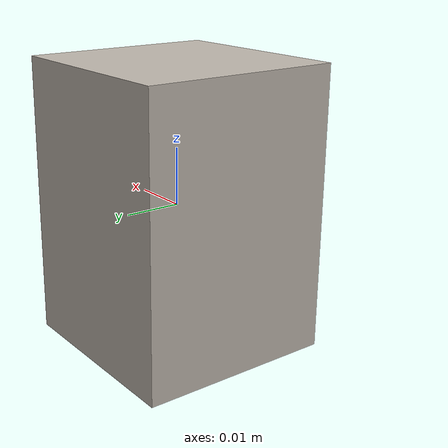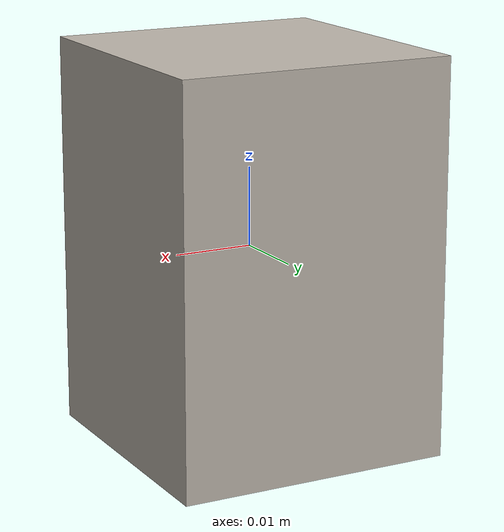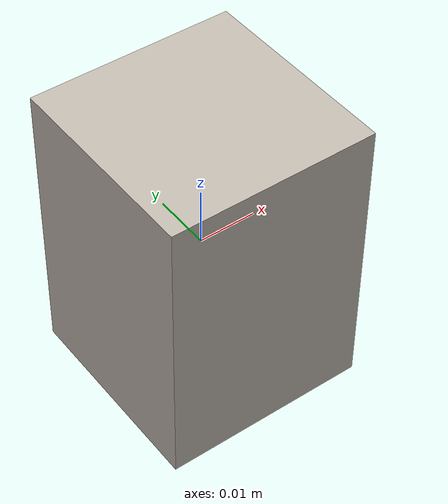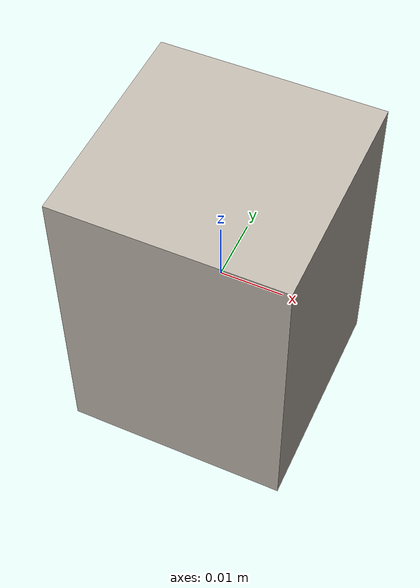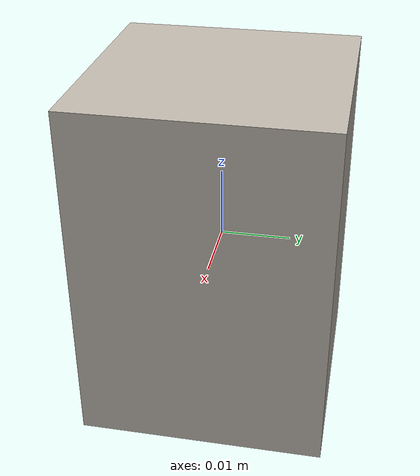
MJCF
<mujoco model="bread">
  <asset>
    <texture file="textures/bread.png" type="2d" name="tex-bread" />
    <material name="bread" reflectance="0.7" texrepeat="15 15" texture="tex-bread" texuniform="true"/>
  </asset>
  <worldbody>
    <body>
      <body name="collision">
        <geom pos="0 0 0" size="0.0175 0.0175 0.025" type="box" solimp="0.998 0.998 0.001" solref="0.001 1" density="50" friction="0.95 0.3 0.1"  material="bread" group="1" condim="4"/>
      </body>

      <site rgba="0 0 0 0" size="0.005" pos="0 0 -0.045" name="bottom_site"/>
      <site rgba="0 0 0 0" size="0.005" pos="0 0 0.03" name="top_site"/>
      <site rgba="0 0 0 0" size="0.005" pos="0.06 0.06 0" name="horizontal_radius_site"/>
    </body>
  </worldbody>
</mujoco>
